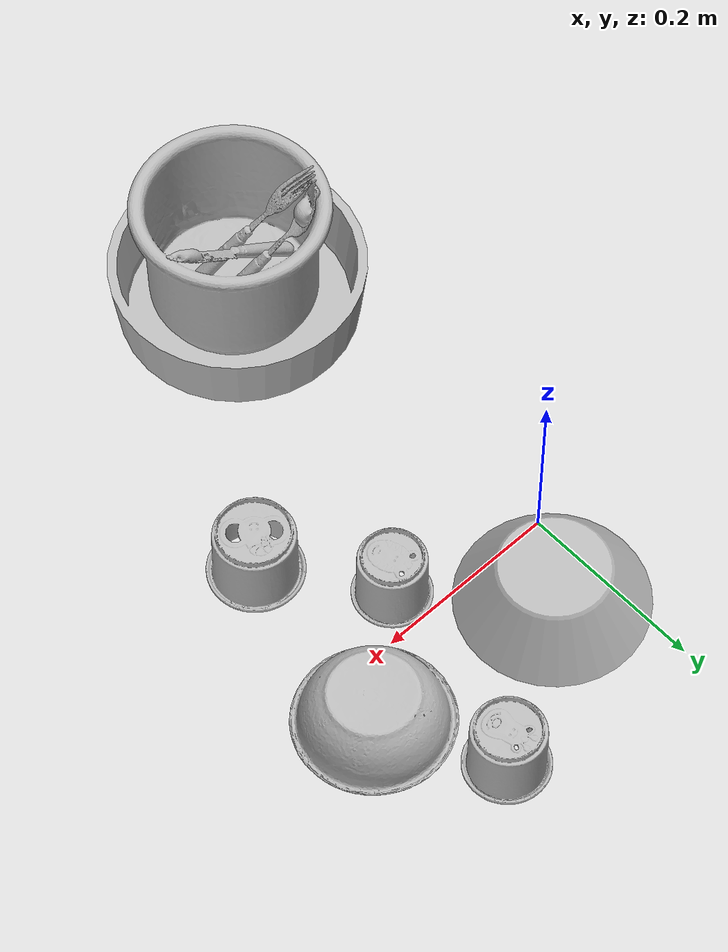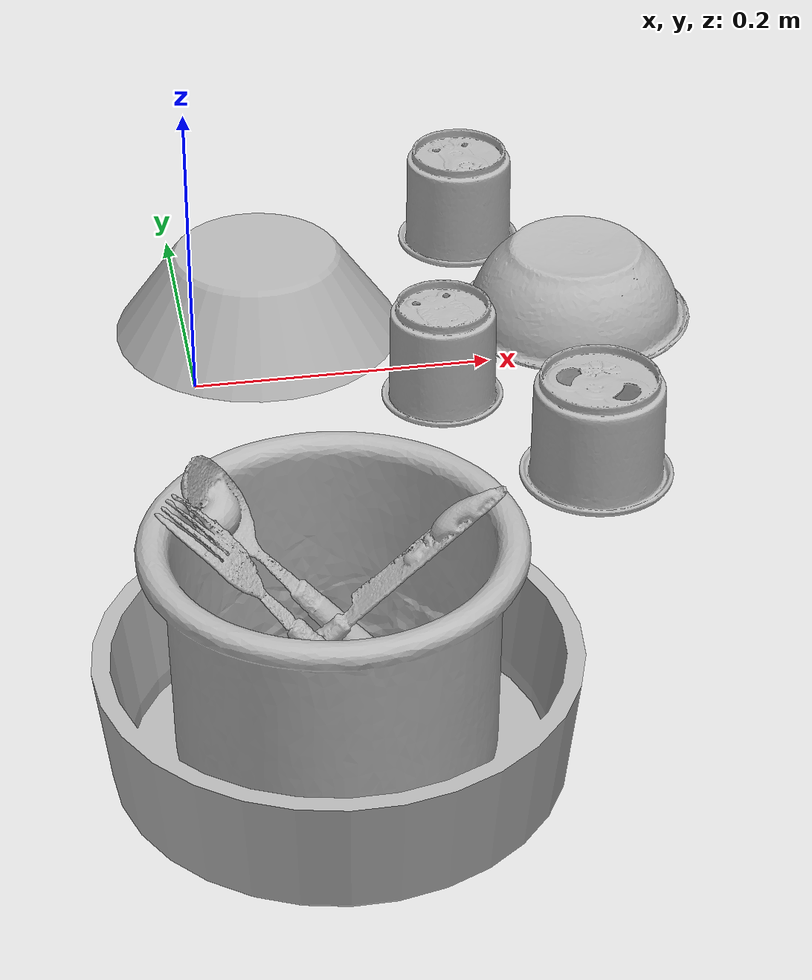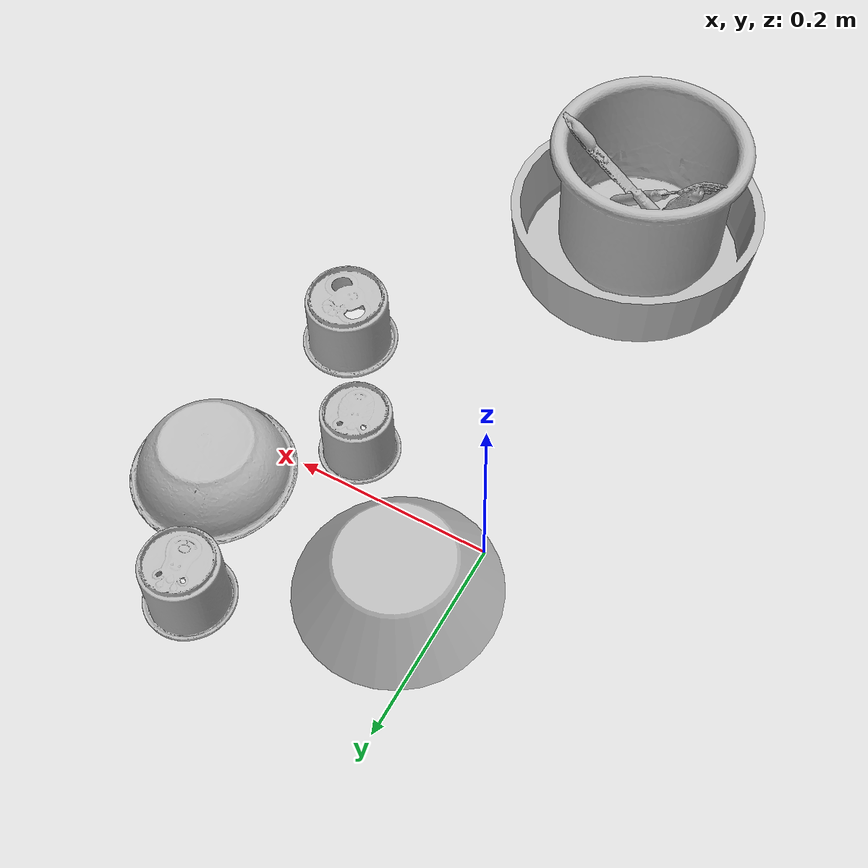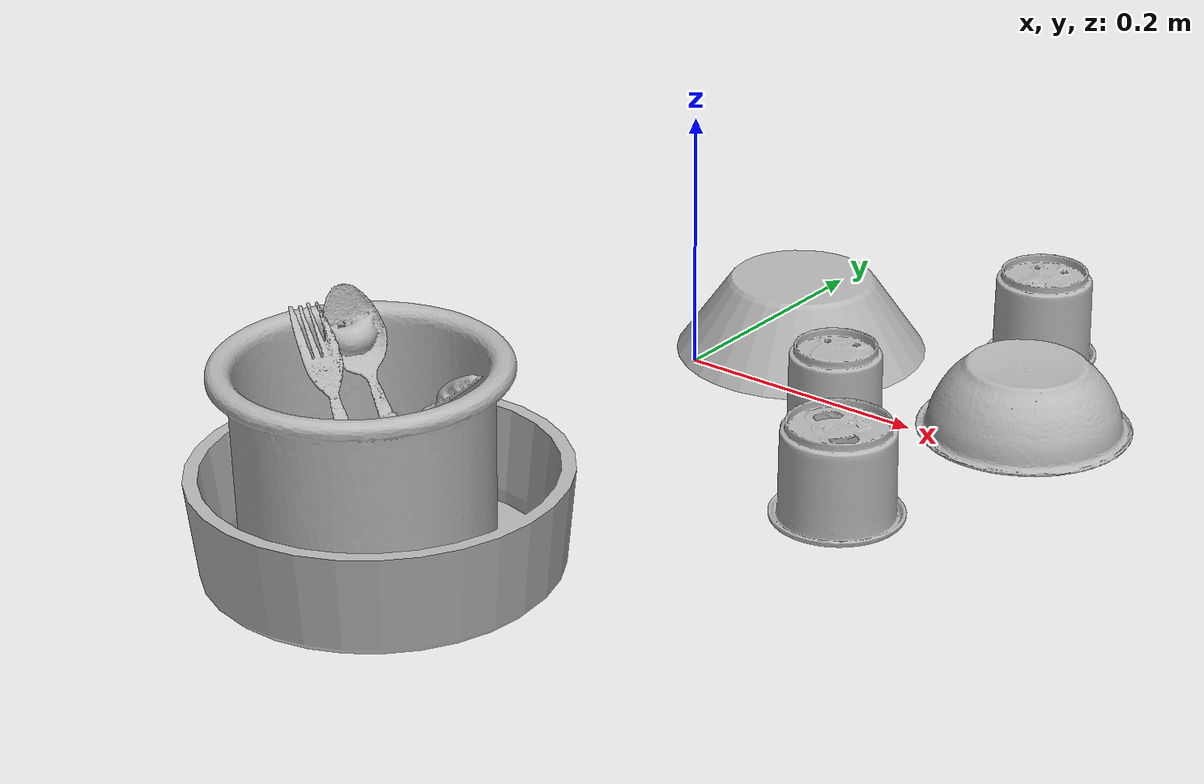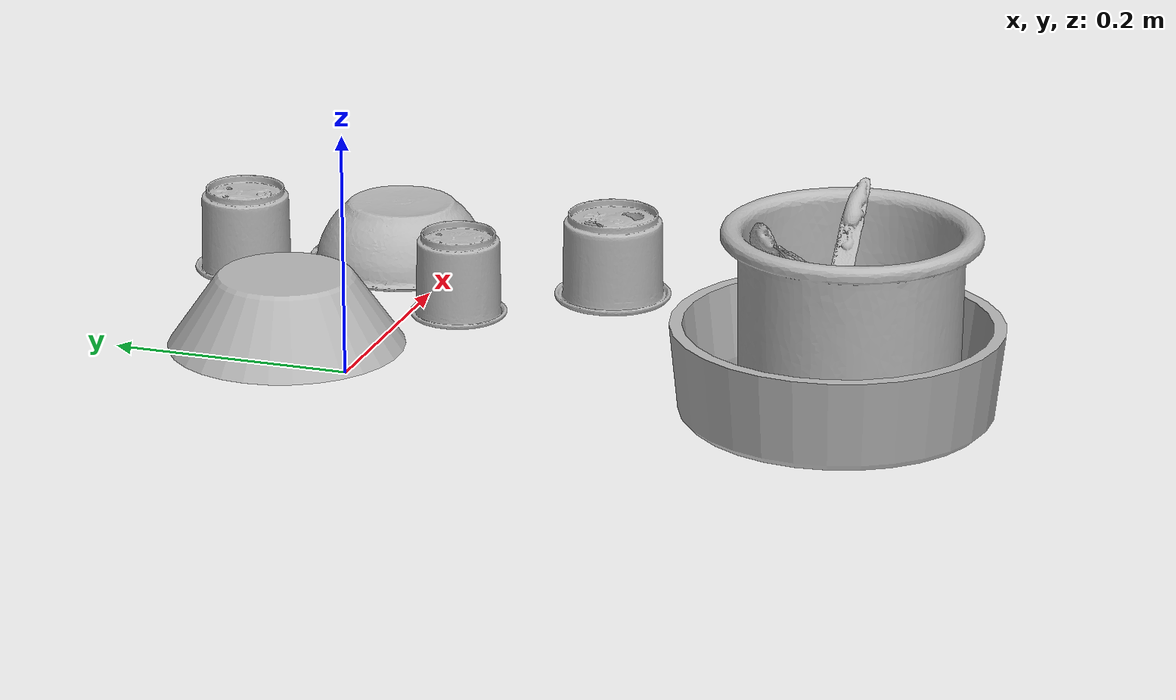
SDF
<?xml version="1.0" ?>
<sdf version="1.4">

  <world name="default">

    <light name="light1" type="point">

      <pose>0 0 1 0 0 0</pose>

      <diffuse>3 3 3 1</diffuse>

      <specular>3 3 3 1</specular>

    </light>

    <light name="light2" type="point">

      <pose>0 0.5 2 0 0 0</pose>

      <diffuse>1 1 1 1</diffuse>

      <specular>1 1 1 1</specular>

    </light>

    <light name="light3" type="point">

      <pose>0 0.5 2 0 0 0</pose>

      <diffuse>3 3 3 1</diffuse>

      <specular>3 3 3 1</specular>

    </light>

    <scene>

      <ambient>0.7 0.7 0.7</ambient>

    </scene>

    <model name="plate1">

      <link name="link_plate1">

        <collision name="default">

          <geometry>

            <mesh>

              <uri>model://pan_tefal/collision_meshes/collision.obj</uri>

              <scale>1.0 1.0 1.0</scale>

            </mesh>

          </geometry>

          <surface>

            <friction>

              <ode>

                <mu>0.5</mu>

                <mu2>0.5</mu2>

              </ode>

            </friction>

          </surface>

        </collision>

        <visual name="default">

          <geometry>

            <mesh>

              <uri>model://pan_tefal/visual_meshes/visual.dae</uri>

              <scale>1.0 1.0 1.0</scale>

            </mesh>

          </geometry>

        </visual>

        <inertial>

          <mass>1.2414644956588745</mass>

          <pose>-0.0001800298341549933 3.278589065303095e-05 -0.00851493515074253 0.0008190165640447202 -0.0003301348973125405 -0.33185319573483557</pose>

          <inertia>

            <ixx>0.00856977</ixx>

            <iyy>0.008625018</iyy>

            <izz>0.015775295</izz>

            <ixy>0</ixy>

            <ixz>0</ixz>

            <iyz>0</iyz>

          </inertia>

        </inertial>

      </link>

      <pose>0.037032004445791245 -0.3991953134536743 0.037767812609672546 0.00017800107941636103 -0.0016717313741510204 0.00015860913515314251</pose>

    </model>

    <model name="cup1">

      <link name="link_cup1">

        <collision name="default">

          <geometry>

            <mesh>

              <uri>model://j_cups/collision_meshes/collision.obj</uri>

              <scale>2.0 2.0 2.0</scale>

            </mesh>

          </geometry>

          <surface>

            <friction>

              <ode>

                <mu>0.5</mu>

                <mu2>0.5</mu2>

              </ode>

            </friction>

          </surface>

        </collision>

        <visual name="default">

          <geometry>

            <mesh>

              <uri>model://j_cups/visual_meshes/visual.dae</uri>

              <scale>2.0 2.0 2.0</scale>

            </mesh>

          </geometry>

        </visual>

        <inertial>

          <mass>0.42814481258392334</mass>

          <pose>0.0012329709716141224 0.0010797895956784487 -0.002695801667869091 0.030303634199985552 0.037580068488308346 0.43868666904956827</pose>

          <inertia>

            <ixx>0.0025146077</ixx>

            <iyy>0.0025407567</iyy>

            <izz>0.0028988216</izz>

            <ixy>0</ixy>

            <ixz>0</ixz>

            <iyz>0</iyz>

          </inertia>

        </inertial>

      </link>

      <pose>0.03379093110561371 -0.41000238060951233 0.08314468711614609 -3.707555970488779e-05 -0.0018392853171572152 0.008450210857856577</pose>

    </model>

    <model name="silverware1">

      <link name="link_silverware1">

        <collision name="default">

          <geometry>

            <mesh>

              <uri>model://fork/collision_meshes/collision.obj</uri>

              <scale>1.0 1.0 1.0</scale>

            </mesh>

          </geometry>

          <surface>

            <friction>

              <ode>

                <mu>0.5</mu>

                <mu2>0.5</mu2>

              </ode>

            </friction>

          </surface>

        </collision>

        <visual name="default">

          <geometry>

            <mesh>

              <uri>model://fork/visual_meshes/visual.dae</uri>

              <scale>1.0 1.0 1.0</scale>

            </mesh>

          </geometry>

        </visual>

        <inertial>

          <mass>0.013809523545205593</mass>

          <pose>-0.029570044949650764 0.0004658822435885668 0.00032188615296036005 -0.013551743215227608 -0.010977837587661193 0.014453899243146438</pose>

          <inertia>

            <ixx>4.84102e-07</ixx>

            <iyy>3.6052697e-05</iyy>

            <izz>3.6269223e-05</izz>

            <ixy>0</ixy>

            <ixz>0</ixz>

            <iyz>0</iyz>

          </inertia>

        </inertial>

      </link>

      <pose>0.014475086703896523 -0.4076172113418579 0.09750082343816757 3.051567855558243 -0.807699319164856 2.719445283901387</pose>

    </model>

    <model name="silverware2">

      <link name="link_silverware2">

        <collision name="default">

          <geometry>

            <mesh>

              <uri>model://knife/collision_meshes/collision.obj</uri>

              <scale>1.0 1.0 1.0</scale>

            </mesh>

          </geometry>

          <surface>

            <friction>

              <ode>

                <mu>0.5</mu>

                <mu2>0.5</mu2>

              </ode>

            </friction>

          </surface>

        </collision>

        <visual name="default">

          <geometry>

            <mesh>

              <uri>model://knife/visual_meshes/visual.dae</uri>

              <scale>1.0 1.0 1.0</scale>

            </mesh>

          </geometry>

        </visual>

        <inertial>

          <mass>0.021972408518195152</mass>

          <pose>-0.023785250261425972 0.0015275123296305537 5.0620161346159875e-05 0.07305788583029697 0.01724841890740089 -0.007409824444555058</pose>

          <inertia>

            <ixx>6.2366604e-07</ixx>

            <iyy>8.441444e-05</iyy>

            <izz>8.46153e-05</izz>

            <ixy>0</ixy>

            <ixz>0</ixz>

            <iyz>0</iyz>

          </inertia>

        </inertial>

      </link>

      <pose>0.0451032891869545 -0.39678022265434265 0.0980079248547554 -3.0516382270581275 -0.7065446975288107 0.04470185119992854</pose>

    </model>

    <model name="silverware3">

      <link name="link_silverware3">

        <collision name="default">

          <geometry>

            <mesh>

              <uri>model://spoon/collision_meshes/collision.obj</uri>

              <scale>1.0 1.0 1.0</scale>

            </mesh>

          </geometry>

          <surface>

            <friction>

              <ode>

                <mu>0.5</mu>

                <mu2>0.5</mu2>

              </ode>

            </friction>

          </surface>

        </collision>

        <visual name="default">

          <geometry>

            <mesh>

              <uri>model://spoon/visual_meshes/visual.dae</uri>

              <scale>1.0 1.0 1.0</scale>

            </mesh>

          </geometry>

        </visual>

        <inertial>

          <mass>0.026694269850850105</mass>

          <pose>-0.005526325199753046 -0.0016034168656915426 -0.0007271653739735484 0.035216710718480135 -0.03906584501417282 0.00615060951780049</pose>

          <inertia>

            <ixx>1.484779e-06</ixx>

            <iyy>0.000101570804</iyy>

            <izz>0.000102303035</izz>

            <ixy>0</ixy>

            <ixz>0</ixz>

            <iyz>0</iyz>

          </inertia>

        </inertial>

      </link>

      <pose>0.02077421545982361 -0.37484607100486755 0.09801194816827774 -0.33976615071207833 -0.7770213177494059 2.788200239186485</pose>

    </model>

    <model name="cup3">

      <link name="link_cup3">

        <collision name="default">

          <geometry>

            <mesh>

              <uri>model://f_cups/collision_meshes/collision.obj</uri>

              <scale>1.0 1.0 1.0</scale>

            </mesh>

          </geometry>

          <surface>

            <friction>

              <ode>

                <mu>0.5</mu>

                <mu2>0.5</mu2>

              </ode>

            </friction>

          </surface>

        </collision>

        <visual name="default">

          <geometry>

            <mesh>

              <uri>model://f_cups/visual_meshes/visual.dae</uri>

              <scale>1.0 1.0 1.0</scale>

            </mesh>

          </geometry>

        </visual>

        <inertial>

          <mass>0.09255705773830414</mass>

          <pose>-0.0031714672222733498 -0.0006240062648430467 -0.0036555363330990076 0.7862294428046025 -0.26079256257201844 -0.18237393521905715</pose>

          <inertia>

            <ixx>8.700612e-05</ixx>

            <iyy>9.127041e-05</iyy>

            <izz>9.501506e-05</izz>

            <ixy>0</ixy>

            <ixz>0</ixz>

            <iyz>0</iyz>

          </inertia>

        </inertial>

      </link>

      <pose>0.16038140654563904 -0.04018719866871834 0.036304011940956116 3.141592608413568 -9.987848817061754e-09 0.9646131333972426</pose>

    </model>

    <model name="cup4">

      <link name="link_cup4">

        <collision name="default">

          <geometry>

            <mesh>

              <uri>model://g_cups/collision_meshes/collision.obj</uri>

              <scale>1.0 1.0 1.0</scale>

            </mesh>

          </geometry>

          <surface>

            <friction>

              <ode>

                <mu>0.5</mu>

                <mu2>0.5</mu2>

              </ode>

            </friction>

          </surface>

        </collision>

        <visual name="default">

          <geometry>

            <mesh>

              <uri>model://g_cups/visual_meshes/visual.dae</uri>

              <scale>1.0 1.0 1.0</scale>

            </mesh>

          </geometry>

        </visual>

        <inertial>

          <mass>0.09045539051294327</mass>

          <pose>-0.0007946272380650043 -4.206356970826164e-05 -0.0021329366136342287 -0.21382427470227655 -0.31410603394020525 0.31120189460551634</pose>

          <inertia>

            <ixx>0.000105581705</ixx>

            <iyy>0.000105222556</iyy>

            <izz>0.000109364446</izz>

            <ixy>0</ixy>

            <ixz>0</ixz>

            <iyz>0</iyz>

          </inertia>

        </inertial>

      </link>

      <pose>0.21071551740169525 0.1699514538049698 0.03711603954434395 -3.1415926411997854 2.9095625628692726e-08 0.32948768321507266</pose>

    </model>

    <model name="cup5">

      <link name="link_cup5">

        <collision name="default">

          <geometry>

            <mesh>

              <uri>model://i_cups/collision_meshes/collision.obj</uri>

              <scale>1.0 1.0 1.0</scale>

            </mesh>

          </geometry>

          <surface>

            <friction>

              <ode>

                <mu>0.5</mu>

                <mu2>0.5</mu2>

              </ode>

            </friction>

          </surface>

        </collision>

        <visual name="default">

          <geometry>

            <mesh>

              <uri>model://i_cups/visual_meshes/visual.dae</uri>

              <scale>1.0 1.0 1.0</scale>

            </mesh>

          </geometry>

        </visual>

        <inertial>

          <mass>0.0815454050898552</mass>

          <pose>0.0001123997790273279 0.00016797320859041065 -0.0008579009445384145 -0.02898318353055437 -0.03987301779891007 -0.3459082462056558</pose>

          <inertia>

            <ixx>0.0001129008</ixx>

            <iyy>0.000113895556</iyy>

            <izz>0.00012618494</izz>

            <ixy>0</ixy>

            <ixz>0</ixz>

            <iyz>0</iyz>

          </inertia>

        </inertial>

      </link>

      <pose>0.23971034586429596 -0.15003958344459534 0.03793303668498993 3.1415925917381093 8.202107304809543e-08 -0.35131794952498496</pose>

    </model>

    <model name="bowl1">

      <link name="link_bowl1">

        <collision name="default">

          <geometry>

            <mesh>

              <uri>model://bowl/collision_meshes/collision.obj</uri>

              <scale>1.0 1.0 1.0</scale>

            </mesh>

          </geometry>

          <surface>

            <friction>

              <ode>

                <mu>0.5</mu>

                <mu2>0.5</mu2>

              </ode>

            </friction>

          </surface>

        </collision>

        <visual name="default">

          <geometry>

            <mesh>

              <uri>model://bowl/visual_meshes/visual.dae</uri>

              <scale>1.0 1.0 1.0</scale>

            </mesh>

          </geometry>

        </visual>

        <inertial>

          <mass>0.1349102407693863</mass>

          <pose>0.00020445192058105022 -0.0010302069131284952 -0.0008042648551054299 -0.01576408127006171 0.01454679335072616 0.7140405111038781</pose>

          <inertia>

            <ixx>0.00030989948</ixx>

            <iyy>0.00030297515</iyy>

            <izz>0.0005213576</izz>

            <ixy>0</ixy>

            <ixz>0</ixz>

            <iyz>0</iyz>

          </inertia>

        </inertial>

      </link>

      <pose>0.2698262333869934 0.05002272129058838 0.027247354388237 -3.1327238738520258 0.0006755489038956022 0.6777153135038165</pose>

    </model>

    <model name="bowl2">

      <link name="link_bowl2">

        <collision name="default">

          <geometry>

            <mesh>

              <uri>model://bowl_a/collision_meshes/collision.obj</uri>

              <scale>1.0 1.0 1.0</scale>

            </mesh>

          </geometry>

          <surface>

            <friction>

              <ode>

                <mu>0.5</mu>

                <mu2>0.5</mu2>

              </ode>

            </friction>

          </surface>

        </collision>

        <visual name="default">

          <geometry>

            <mesh>

              <uri>model://bowl_a/visual_meshes/visual.dae</uri>

              <scale>1.0 1.0 1.0</scale>

            </mesh>

          </geometry>

        </visual>

        <inertial>

          <mass>0.4816342294216156</mass>

          <pose>0.000278677063761279 4.73155923828017e-05 -0.0013765296898782253 -0.0009805427744981278 -0.0010938171301827632 -0.19123023792191385</pose>

          <inertia>

            <ixx>0.0013712347</ixx>

            <iyy>0.0013796532</iyy>

            <izz>0.0024387941</izz>

            <ixy>0</ixy>

            <ixz>0</ixz>

            <iyz>0</iyz>

          </inertia>

        </inertial>

      </link>

      <pose>0.05105813592672348 0.07085678726434708 0.029795339331030846 3.139678234138787 0.0009600931717054565 -1.0370843223290664</pose>

    </model>

  </world>

</sdf>
